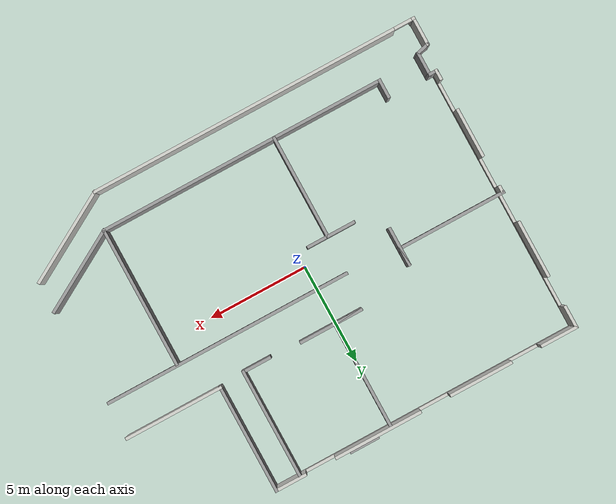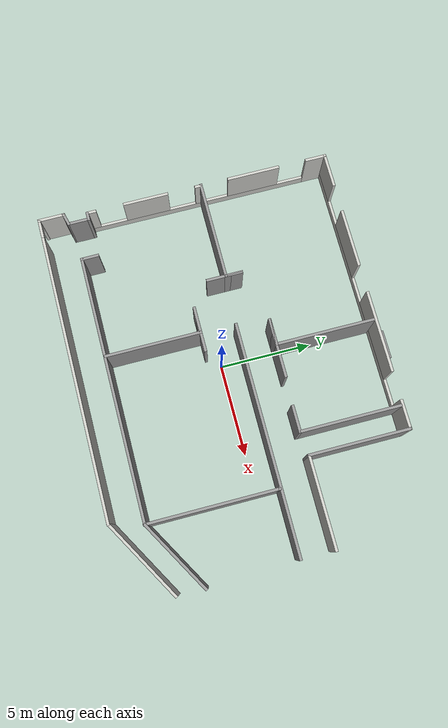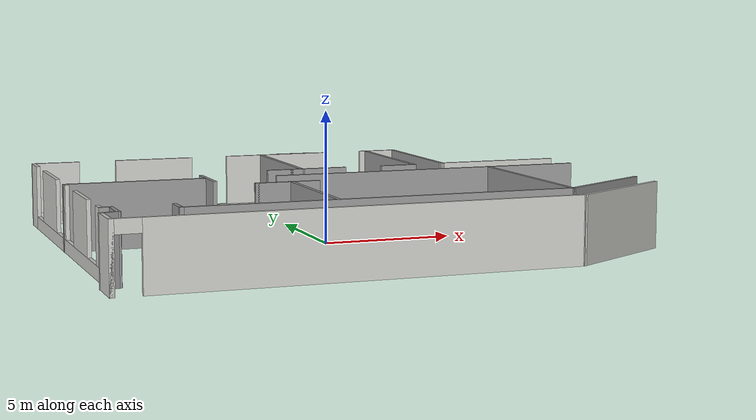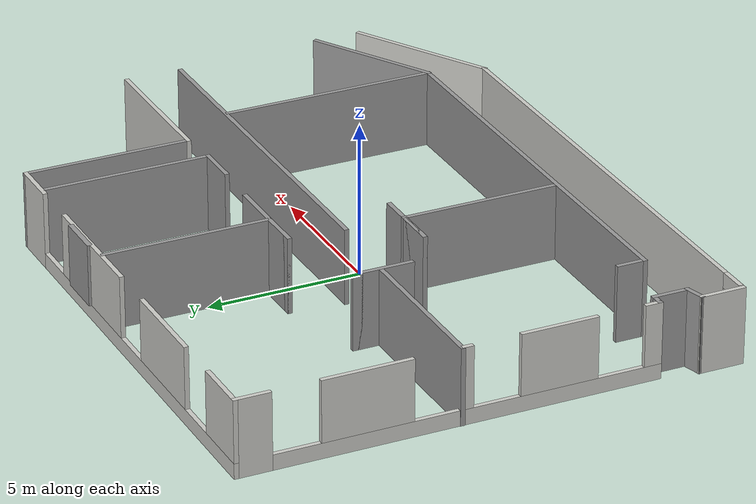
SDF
<?xml version='1.0'?>
<sdf version='1.6'>
  <model name='myoffice2f'>
    <pose frame=''>0.632045 0.350636 0 0 -0 0</pose>
    <link name='Wall_0'>
      <collision name='Wall_0_Collision'>
        <geometry>
          <box>
            <size>5 0.15 2.5</size>
          </box>
        </geometry>
        <pose frame=''>0 0 1.25 0 -0 0</pose>
      </collision>
      <visual name='Wall_0_Visual'>
        <pose frame=''>0 0 1.25 0 -0 0</pose>
        <geometry>
          <box>
            <size>5 0.15 2.5</size>
          </box>
        </geometry>
        <material>
          <script>
            <uri>file://media/materials/scripts/gazebo.material</uri>
            <name>Gazebo/CeilingTiled</name>
          </script>
          <ambient>1 1 1 1</ambient>
        </material>
        <meta>
          <layer>0</layer>
        </meta>
      </visual>
      <pose frame=''>7.82857 2.64137 0 0 -0 3.14159</pose>
    </link>
    <link name='Wall_1'>
      <collision name='Wall_1_Collision'>
        <geometry>
          <box>
            <size>5.5 0.15 2.5</size>
          </box>
        </geometry>
        <pose frame=''>0 0 1.25 0 -0 0</pose>
      </collision>
      <visual name='Wall_1_Visual'>
        <pose frame=''>0 0 1.25 0 -0 0</pose>
        <geometry>
          <box>
            <size>5.5 0.15 2.5</size>
          </box>
        </geometry>
        <material>
          <script>
            <uri>file://media/materials/scripts/gazebo.material</uri>
            <name>Gazebo/Grey</name>
          </script>
          <ambient>1 1 1 1</ambient>
        </material>
        <meta>
          <layer>0</layer>
        </meta>
      </visual>
      <pose frame=''>5.40357 5.31637 0 0 -0 1.5708</pose>
    </link>
    <link name='Wall_11'>
      <collision name='Wall_11_Collision'>
        <geometry>
          <box>
            <size>4.5 0.15 2.5</size>
          </box>
        </geometry>
        <pose frame=''>0 0 1.25 0 -0 0</pose>
      </collision>
      <visual name='Wall_11_Visual'>
        <pose frame=''>0 0 1.25 0 -0 0</pose>
        <geometry>
          <box>
            <size>4.5 0.15 2.5</size>
          </box>
        </geometry>
        <material>
          <script>
            <uri>file://media/materials/scripts/gazebo.material</uri>
            <name>Gazebo/Grey</name>
          </script>
          <ambient>0.533333 0.541176 0.521569 1</ambient>
        </material>
        <meta>
          <layer>0</layer>
        </meta>
      </visual>
      <pose frame=''>8.53178 -5.1213 0 0 -0 -2.61799</pose>
    </link>
    <link name='Wall_12'>
      <collision name='Wall_12_Collision'>
        <geometry>
          <box>
            <size>14.5 0.15 2.5</size>
          </box>
        </geometry>
        <pose frame=''>0 0 1.25 0 -0 0</pose>
      </collision>
      <visual name='Wall_12_Visual'>
        <pose frame=''>0 0 1.25 0 -0 0</pose>
        <geometry>
          <box>
            <size>14.5 0.15 2.5</size>
          </box>
        </geometry>
        <material>
          <script>
            <uri>file://media/materials/scripts/gazebo.material</uri>
            <name>Gazebo/Grey</name>
          </script>
          <ambient>0.533333 0.541176 0.521569 1</ambient>
        </material>
        <meta>
          <layer>0</layer>
        </meta>
      </visual>
      <pose frame=''>-0.52682 -6.2088 0 0 -0 3.14159</pose>
    </link>
    <link name='Wall_13'>
      <collision name='Wall_13_Collision'>
        <geometry>
          <box>
            <size>1 0.15 2.5</size>
          </box>
        </geometry>
        <pose frame=''>0 0 1.25 0 -0 0</pose>
      </collision>
      <visual name='Wall_13_Visual'>
        <pose frame=''>0 0 1.25 0 -0 0</pose>
        <geometry>
          <box>
            <size>1 0.15 2.5</size>
          </box>
        </geometry>
        <material>
          <script>
            <uri>file://media/materials/scripts/gazebo.material</uri>
            <name>Gazebo/Grey</name>
          </script>
          <ambient>1 1 1 1</ambient>
        </material>
        <meta>
          <layer>0</layer>
        </meta>
      </visual>
      <pose frame=''>-7.70182 -5.7838 0 0 -0 1.5708</pose>
    </link>
    <link name='Wall_15'>
      <collision name='Wall_15_Collision'>
        <geometry>
          <box>
            <size>12.5 0.15 2.5</size>
          </box>
        </geometry>
        <pose frame=''>0 0 1.25 0 -0 0</pose>
      </collision>
      <visual name='Wall_15_Visual'>
        <pose frame=''>0 0 1.25 0 -0 0</pose>
        <geometry>
          <box>
            <size>12.5 0.15 2.5</size>
          </box>
        </geometry>
        <material>
          <script>
            <uri>file://media/materials/scripts/gazebo.material</uri>
            <name>Gazebo/Grey</name>
          </script>
          <ambient>0.533333 0.541176 0.521569 1</ambient>
        </material>
        <meta>
          <layer>0</layer>
        </meta>
      </visual>
      <pose frame=''>4.03811 0.82087 0 0 -0 3.14159</pose>
    </link>
    <link name='Wall_19'>
      <collision name='Wall_19_Collision'>
        <geometry>
          <box>
            <size>7.1 0.15 2.5</size>
          </box>
        </geometry>
        <pose frame=''>0 0 1.25 0 -0 0</pose>
      </collision>
      <visual name='Wall_19_Visual'>
        <pose frame=''>0 0 1.25 0 -0 0</pose>
        <geometry>
          <box>
            <size>7.1 0.15 2.5</size>
          </box>
        </geometry>
        <material>
          <script>
            <uri>file://media/materials/scripts/gazebo.material</uri>
            <name>Gazebo/Grey</name>
          </script>
          <ambient>0.533333 0.541176 0.521569 1</ambient>
        </material>
        <meta>
          <layer>0</layer>
        </meta>
      </visual>
      <pose frame=''>6.64818 -2.7338 0 0 -0 1.5708</pose>
    </link>
    <link name='Wall_2'>
      <pose frame=''>-2.39643 7.99137 0 0 -0 3.14159</pose>
      <visual name='Wall_2_Visual_0'>
        <pose frame=''>-7.0543 0 1.25 0 -0 0</pose>
        <geometry>
          <box>
            <size>1.64141 0.15 2.5</size>
          </box>
        </geometry>
        <material>
          <script>
            <uri>file://media/materials/scripts/gazebo.material</uri>
            <name>Gazebo/CeilingTiled</name>
          </script>
          <ambient>1 1 1 1</ambient>
        </material>
        <meta>
          <layer>0</layer>
        </meta>
      </visual>
      <collision name='Wall_2_Collision_0'>
        <geometry>
          <box>
            <size>1.64141 0.15 2.5</size>
          </box>
        </geometry>
        <pose frame=''>-7.0543 0 1.25 0 -0 0</pose>
      </collision>
      <visual name='Wall_2_Visual_1'>
        <pose frame=''>0.820704 0 0.25 0 -0 0</pose>
        <geometry>
          <box>
            <size>14.1086 0.15 0.5</size>
          </box>
        </geometry>
        <material>
          <script>
            <uri>file://media/materials/scripts/gazebo.material</uri>
            <name>Gazebo/CeilingTiled</name>
          </script>
          <ambient>1 1 1 1</ambient>
        </material>
        <meta>
          <layer>0</layer>
        </meta>
      </visual>
      <collision name='Wall_2_Collision_1'>
        <geometry>
          <box>
            <size>14.1086 0.15 0.5</size>
          </box>
        </geometry>
        <pose frame=''>0.820704 0 0.25 0 -0 0</pose>
      </collision>
      <visual name='Wall_2_Visual_2'>
        <pose frame=''>-2.49734 0 1.5 0 -0 0</pose>
        <geometry>
          <box>
            <size>4.4725 0.15 2</size>
          </box>
        </geometry>
        <material>
          <script>
            <uri>file://media/materials/scripts/gazebo.material</uri>
            <name>Gazebo/CeilingTiled</name>
          </script>
          <ambient>1 1 1 1</ambient>
        </material>
        <meta>
          <layer>0</layer>
        </meta>
      </visual>
      <collision name='Wall_2_Collision_2'>
        <geometry>
          <box>
            <size>4.4725 0.15 2</size>
          </box>
        </geometry>
        <pose frame=''>-2.49734 0 1.5 0 -0 0</pose>
      </collision>
      <visual name='Wall_2_Visual_3'>
        <pose frame=''>2.84966 0 1.5 0 -0 0</pose>
        <geometry>
          <box>
            <size>3.22151 0.15 2</size>
          </box>
        </geometry>
        <material>
          <script>
            <uri>file://media/materials/scripts/gazebo.material</uri>
            <name>Gazebo/CeilingTiled</name>
          </script>
          <ambient>1 1 1 1</ambient>
        </material>
        <meta>
          <layer>0</layer>
        </meta>
      </visual>
      <collision name='Wall_2_Collision_3'>
        <geometry>
          <box>
            <size>3.22151 0.15 2</size>
          </box>
        </geometry>
        <pose frame=''>2.84966 0 1.5 0 -0 0</pose>
      </collision>
      <visual name='Wall_2_Visual_4'>
        <pose frame=''>6.91771 0 1.5 0 -0 0</pose>
        <geometry>
          <box>
            <size>1.91459 0.15 2</size>
          </box>
        </geometry>
        <material>
          <script>
            <uri>file://media/materials/scripts/gazebo.material</uri>
            <name>Gazebo/CeilingTiled</name>
          </script>
          <ambient>1 1 1 1</ambient>
        </material>
        <meta>
          <layer>0</layer>
        </meta>
      </visual>
      <collision name='Wall_2_Collision_4'>
        <geometry>
          <box>
            <size>1.91459 0.15 2</size>
          </box>
        </geometry>
        <pose frame=''>6.91771 0 1.5 0 -0 0</pose>
      </collision>
    </link>
    <link name='Wall_20'>
      <collision name='Wall_20_Collision'>
        <geometry>
          <box>
            <size>0.15 0.15 2.5</size>
          </box>
        </geometry>
        <pose frame=''>0 0 1.25 0 -0 0</pose>
      </collision>
      <visual name='Wall_20_Visual'>
        <pose frame=''>0 0 1.25 0 -0 0</pose>
        <geometry>
          <box>
            <size>0.15 0.15 2.5</size>
          </box>
        </geometry>
        <material>
          <script>
            <uri>file://media/materials/scripts/gazebo.material</uri>
            <name>Gazebo/Grey</name>
          </script>
          <ambient>1 1 1 1</ambient>
        </material>
        <meta>
          <layer>0</layer>
        </meta>
      </visual>
      <pose frame=''>6.64818 0.741201 0 0 -0 0</pose>
    </link>
    <link name='Wall_22'>
      <collision name='Wall_22_Collision'>
        <geometry>
          <box>
            <size>5.5 0.15 2.5</size>
          </box>
        </geometry>
        <pose frame=''>0 0 1.25 0 -0 0</pose>
      </collision>
      <visual name='Wall_22_Visual'>
        <pose frame=''>0 0 1.25 0 -0 0</pose>
        <geometry>
          <box>
            <size>5.5 0.15 2.5</size>
          </box>
        </geometry>
        <material>
          <script>
            <uri>file://media/materials/scripts/gazebo.material</uri>
            <name>Gazebo/Grey</name>
          </script>
          <ambient>0.533333 0.541176 0.521569 1</ambient>
        </material>
        <meta>
          <layer>0</layer>
        </meta>
      </visual>
      <pose frame=''>-7.54195 0.982693 0 0 -0 0</pose>
    </link>
    <link name='Wall_23'>
      <collision name='Wall_23_Collision'>
        <geometry>
          <box>
            <size>1 0.15 2.5</size>
          </box>
        </geometry>
        <pose frame=''>0 0 1.25 0 -0 0</pose>
      </collision>
      <visual name='Wall_23_Visual'>
        <pose frame=''>0 0 1.25 0 -0 0</pose>
        <geometry>
          <box>
            <size>1 0.15 2.5</size>
          </box>
        </geometry>
        <material>
          <script>
            <uri>file://media/materials/scripts/gazebo.material</uri>
            <name>Gazebo/Grey</name>
          </script>
          <ambient>0.533333 0.541176 0.521569 1</ambient>
        </material>
        <meta>
          <layer>0</layer>
        </meta>
      </visual>
      <pose frame=''>-4.86695 1.40769 0 0 -0 1.5708</pose>
    </link>
    <link name='Wall_24'>
      <collision name='Wall_24_Collision'>
        <geometry>
          <box>
            <size>2 0.15 2.5</size>
          </box>
        </geometry>
        <pose frame=''>0 0 1.25 0 -0 0</pose>
      </collision>
      <visual name='Wall_24_Visual'>
        <pose frame=''>0 0 1.25 0 -0 0</pose>
        <geometry>
          <box>
            <size>2 0.15 2.5</size>
          </box>
        </geometry>
        <material>
          <script>
            <uri>file://media/materials/scripts/gazebo.material</uri>
            <name>Gazebo/Grey</name>
          </script>
          <ambient>0.533333 0.541176 0.521569 1</ambient>
        </material>
        <meta>
          <layer>0</layer>
        </meta>
      </visual>
      <pose frame=''>-4.86695 0.907693 0 0 -0 -1.5708</pose>
    </link>
    <link name='Wall_26'>
      <collision name='Wall_26_Collision'>
        <geometry>
          <box>
            <size>5.25 0.15 2.5</size>
          </box>
        </geometry>
        <pose frame=''>0 0 1.25 0 -0 0</pose>
      </collision>
      <visual name='Wall_26_Visual'>
        <pose frame=''>0 0 1.25 0 -0 0</pose>
        <geometry>
          <box>
            <size>5.25 0.15 2.5</size>
          </box>
        </geometry>
        <material>
          <script>
            <uri>file://media/materials/scripts/gazebo.material</uri>
            <name>Gazebo/Grey</name>
          </script>
          <ambient>0.533333 0.541176 0.521569 1</ambient>
        </material>
        <meta>
          <layer>0</layer>
        </meta>
      </visual>
      <pose frame=''>-2.20675 -3.62794 0 0 -0 1.5708</pose>
    </link>
    <link name='Wall_27'>
      <collision name='Wall_27_Collision'>
        <geometry>
          <box>
            <size>1.5 0.15 2.5</size>
          </box>
        </geometry>
        <pose frame=''>0 0 1.25 0 -0 0</pose>
      </collision>
      <visual name='Wall_27_Visual'>
        <pose frame=''>0 0 1.25 0 -0 0</pose>
        <geometry>
          <box>
            <size>1.5 0.15 2.5</size>
          </box>
        </geometry>
        <material>
          <script>
            <uri>file://media/materials/scripts/gazebo.material</uri>
            <name>Gazebo/Grey</name>
          </script>
          <ambient>0.533333 0.541176 0.521569 1</ambient>
        </material>
        <meta>
          <layer>0</layer>
        </meta>
      </visual>
      <pose frame=''>-2.88175 -1.07794 0 0 -0 3.14159</pose>
    </link>
    <link name='Wall_28'>
      <collision name='Wall_28_Collision'>
        <geometry>
          <box>
            <size>2.5 0.15 2.5</size>
          </box>
        </geometry>
        <pose frame=''>0 0 1.25 0 -0 0</pose>
      </collision>
      <visual name='Wall_28_Visual'>
        <pose frame=''>0 0 1.25 0 -0 0</pose>
        <geometry>
          <box>
            <size>2.5 0.15 2.5</size>
          </box>
        </geometry>
        <material>
          <script>
            <uri>file://media/materials/scripts/gazebo.material</uri>
            <name>Gazebo/Grey</name>
          </script>
          <ambient>0.533333 0.541176 0.521569 1</ambient>
        </material>
        <meta>
          <layer>0</layer>
        </meta>
      </visual>
      <pose frame=''>-2.38175 -1.07794 0 0 -0 0</pose>
    </link>
    <link name='Wall_3'>
      <pose frame=''>-10.1964 1.31637 0 0 -0 -1.5708</pose>
      <visual name='Wall_3_Visual_0'>
        <pose frame=''>-6.15767 0 1.25 0 -0 0</pose>
        <geometry>
          <box>
            <size>1.18465 0.15 2.5</size>
          </box>
        </geometry>
        <material>
          <script>
            <uri>file://media/materials/scripts/gazebo.material</uri>
            <name>Gazebo/CeilingTiled</name>
          </script>
          <ambient>1 1 1 1</ambient>
        </material>
        <meta>
          <layer>0</layer>
        </meta>
      </visual>
      <collision name='Wall_3_Collision_0'>
        <geometry>
          <box>
            <size>1.18465 0.15 2.5</size>
          </box>
        </geometry>
        <pose frame=''>-6.15767 0 1.25 0 -0 0</pose>
      </collision>
      <visual name='Wall_3_Visual_1'>
        <pose frame=''>0.592326 0 0.25 0 -0 0</pose>
        <geometry>
          <box>
            <size>12.3153 0.15 0.5</size>
          </box>
        </geometry>
        <material>
          <script>
            <uri>file://media/materials/scripts/gazebo.material</uri>
            <name>Gazebo/CeilingTiled</name>
          </script>
          <ambient>1 1 1 1</ambient>
        </material>
        <meta>
          <layer>0</layer>
        </meta>
      </visual>
      <collision name='Wall_3_Collision_1'>
        <geometry>
          <box>
            <size>12.3153 0.15 0.5</size>
          </box>
        </geometry>
        <pose frame=''>0.592326 0 0.25 0 -0 0</pose>
      </collision>
      <visual name='Wall_3_Visual_2'>
        <pose frame=''>-2.61601 0 1.5 0 -0 0</pose>
        <geometry>
          <box>
            <size>2.89867 0.15 2</size>
          </box>
        </geometry>
        <material>
          <script>
            <uri>file://media/materials/scripts/gazebo.material</uri>
            <name>Gazebo/CeilingTiled</name>
          </script>
          <ambient>1 1 1 1</ambient>
        </material>
        <meta>
          <layer>0</layer>
        </meta>
      </visual>
      <collision name='Wall_3_Collision_2'>
        <geometry>
          <box>
            <size>2.89867 0.15 2</size>
          </box>
        </geometry>
        <pose frame=''>-2.61601 0 1.5 0 -0 0</pose>
      </collision>
      <visual name='Wall_3_Visual_3'>
        <pose frame=''>0.511478 0 1.5 0 -0 0</pose>
        <geometry>
          <box>
            <size>0.356318 0.15 2</size>
          </box>
        </geometry>
        <material>
          <script>
            <uri>file://media/materials/scripts/gazebo.material</uri>
            <name>Gazebo/CeilingTiled</name>
          </script>
          <ambient>1 1 1 1</ambient>
        </material>
        <meta>
          <layer>0</layer>
        </meta>
      </visual>
      <collision name='Wall_3_Collision_3'>
        <geometry>
          <box>
            <size>0.356318 0.15 2</size>
          </box>
        </geometry>
        <pose frame=''>0.511478 0 1.5 0 -0 0</pose>
      </collision>
      <visual name='Wall_3_Visual_4'>
        <pose frame=''>3.4372 0 1.5 0 -0 0</pose>
        <geometry>
          <box>
            <size>2.49512 0.15 2</size>
          </box>
        </geometry>
        <material>
          <script>
            <uri>file://media/materials/scripts/gazebo.material</uri>
            <name>Gazebo/CeilingTiled</name>
          </script>
          <ambient>1 1 1 1</ambient>
        </material>
        <meta>
          <layer>0</layer>
        </meta>
      </visual>
      <collision name='Wall_3_Collision_4'>
        <geometry>
          <box>
            <size>2.49512 0.15 2</size>
          </box>
        </geometry>
        <pose frame=''>3.4372 0 1.5 0 -0 0</pose>
      </collision>
      <visual name='Wall_3_Visual_5'>
        <pose frame=''>6.46738 0 1.5 0 -0 0</pose>
        <geometry>
          <box>
            <size>0.565244 0.15 2</size>
          </box>
        </geometry>
        <material>
          <script>
            <uri>file://media/materials/scripts/gazebo.material</uri>
            <name>Gazebo/CeilingTiled</name>
          </script>
          <ambient>1 1 1 1</ambient>
        </material>
        <meta>
          <layer>0</layer>
        </meta>
      </visual>
      <collision name='Wall_3_Collision_5'>
        <geometry>
          <box>
            <size>0.565244 0.15 2</size>
          </box>
        </geometry>
        <pose frame=''>6.46738 0 1.5 0 -0 0</pose>
      </collision>
    </link>
    <link name='Wall_30'>
      <collision name='Wall_30_Collision'>
        <geometry>
          <box>
            <size>5.5 0.15 2.5</size>
          </box>
        </geometry>
        <pose frame=''>0 0 1.25 0 -0 0</pose>
      </collision>
      <visual name='Wall_30_Visual'>
        <pose frame=''>0 0 1.25 0 -0 0</pose>
        <geometry>
          <box>
            <size>5.5 0.15 2.5</size>
          </box>
        </geometry>
        <material>
          <script>
            <uri>file://media/materials/scripts/gazebo.material</uri>
            <name>Gazebo/Grey</name>
          </script>
          <ambient>0.533333 0.541176 0.521569 1</ambient>
        </material>
        <meta>
          <layer>0</layer>
        </meta>
      </visual>
      <pose frame=''>-0.588527 5.26605 0 0 -0 -1.5708</pose>
    </link>
    <link name='Wall_31'>
      <collision name='Wall_31_Collision'>
        <geometry>
          <box>
            <size>1.5 0.15 2.5</size>
          </box>
        </geometry>
        <pose frame=''>0 0 1.25 0 -0 0</pose>
      </collision>
      <visual name='Wall_31_Visual'>
        <pose frame=''>0 0 1.25 0 -0 0</pose>
        <geometry>
          <box>
            <size>1.5 0.15 2.5</size>
          </box>
        </geometry>
        <material>
          <script>
            <uri>file://media/materials/scripts/gazebo.material</uri>
            <name>Gazebo/Grey</name>
          </script>
          <ambient>0.533333 0.541176 0.521569 1</ambient>
        </material>
        <meta>
          <layer>0</layer>
        </meta>
      </visual>
      <pose frame=''>-1.26353 2.59105 0 0 -0 3.14159</pose>
    </link>
    <link name='Wall_32'>
      <collision name='Wall_32_Collision'>
        <geometry>
          <box>
            <size>3.25 0.15 2.5</size>
          </box>
        </geometry>
        <pose frame=''>0 0 1.25 0 -0 0</pose>
      </collision>
      <visual name='Wall_32_Visual'>
        <pose frame=''>0 0 1.25 0 -0 0</pose>
        <geometry>
          <box>
            <size>3.25 0.15 2.5</size>
          </box>
        </geometry>
        <material>
          <script>
            <uri>file://media/materials/scripts/gazebo.material</uri>
            <name>Gazebo/Grey</name>
          </script>
          <ambient>0.533333 0.541176 0.521569 1</ambient>
        </material>
        <meta>
          <layer>0</layer>
        </meta>
      </visual>
      <pose frame=''>-0.388527 2.59105 0 0 -0 0</pose>
    </link>
    <link name='Wall_34'>
      <collision name='Wall_34_Collision'>
        <geometry>
          <box>
            <size>5.5 0.15 2.5</size>
          </box>
        </geometry>
        <pose frame=''>0 0 1.25 0 -0 0</pose>
      </collision>
      <visual name='Wall_34_Visual'>
        <pose frame=''>0 0 1.25 0 -0 0</pose>
        <geometry>
          <box>
            <size>5.5 0.15 2.5</size>
          </box>
        </geometry>
        <material>
          <script>
            <uri>file://media/materials/scripts/gazebo.material</uri>
            <name>Gazebo/Grey</name>
          </script>
          <ambient>0.533333 0.541176 0.521569 1</ambient>
        </material>
        <meta>
          <layer>0</layer>
        </meta>
      </visual>
      <pose frame=''>4.13638 5.19197 0 0 -0 -1.5708</pose>
    </link>
    <link name='Wall_35'>
      <collision name='Wall_35_Collision'>
        <geometry>
          <box>
            <size>1.5 0.15 2.5</size>
          </box>
        </geometry>
        <pose frame=''>0 0 1.25 0 -0 0</pose>
      </collision>
      <visual name='Wall_35_Visual'>
        <pose frame=''>0 0 1.25 0 -0 0</pose>
        <geometry>
          <box>
            <size>1.5 0.15 2.5</size>
          </box>
        </geometry>
        <material>
          <script>
            <uri>file://media/materials/scripts/gazebo.material</uri>
            <name>Gazebo/Grey</name>
          </script>
          <ambient>0.533333 0.541176 0.521569 1</ambient>
        </material>
        <meta>
          <layer>0</layer>
        </meta>
      </visual>
      <pose frame=''>3.46138 2.51697 0 0 -0 3.14159</pose>
    </link>
    <link name='Wall_4'>
      <collision name='Wall_4_Collision'>
        <geometry>
          <box>
            <size>0.5 0.15 2.5</size>
          </box>
        </geometry>
        <pose frame=''>0 0 1.25 0 -0 0</pose>
      </collision>
      <visual name='Wall_4_Visual'>
        <pose frame=''>0 0 1.25 0 -0 0</pose>
        <geometry>
          <box>
            <size>0.5 0.15 2.5</size>
          </box>
        </geometry>
        <material>
          <script>
            <uri>file://media/materials/scripts/gazebo.material</uri>
            <name>Gazebo/Grey</name>
          </script>
          <ambient>1 1 1 1</ambient>
        </material>
        <meta>
          <layer>0</layer>
        </meta>
      </visual>
      <pose frame=''>-10.0214 -5.35863 0 0 -0 0</pose>
    </link>
    <link name='Wall_5'>
      <collision name='Wall_5_Collision'>
        <geometry>
          <box>
            <size>1.25 0.15 2.5</size>
          </box>
        </geometry>
        <pose frame=''>0 0 1.25 0 -0 0</pose>
      </collision>
      <visual name='Wall_5_Visual'>
        <pose frame=''>0 0 1.25 0 -0 0</pose>
        <geometry>
          <box>
            <size>1.25 0.15 2.5</size>
          </box>
        </geometry>
        <material>
          <script>
            <uri>file://media/materials/scripts/gazebo.material</uri>
            <name>Gazebo/Grey</name>
          </script>
          <ambient>1 1 1 1</ambient>
        </material>
        <meta>
          <layer>0</layer>
        </meta>
      </visual>
      <pose frame=''>-9.84643 -5.90863 0 0 -0 -1.5708</pose>
    </link>
    <link name='Wall_6'>
      <collision name='Wall_6_Collision'>
        <geometry>
          <box>
            <size>0.75 0.15 2.5</size>
          </box>
        </geometry>
        <pose frame=''>0 0 1.25 0 -0 0</pose>
      </collision>
      <visual name='Wall_6_Visual'>
        <pose frame=''>0 0 1.25 0 -0 0</pose>
        <geometry>
          <box>
            <size>0.75 0.15 2.5</size>
          </box>
        </geometry>
        <material>
          <script>
            <uri>file://media/materials/scripts/gazebo.material</uri>
            <name>Gazebo/Grey</name>
          </script>
          <ambient>1 1 1 1</ambient>
        </material>
        <meta>
          <layer>0</layer>
        </meta>
      </visual>
      <pose frame=''>-10.1362 -6.53627 0 0 -0 -2.87979</pose>
    </link>
    <link name='Wall_7'>
      <collision name='Wall_7_Collision'>
        <geometry>
          <box>
            <size>1.5 0.15 2.5</size>
          </box>
        </geometry>
        <pose frame=''>0 0 1.25 0 -0 0</pose>
      </collision>
      <visual name='Wall_7_Visual'>
        <pose frame=''>0 0 1.25 0 -0 0</pose>
        <geometry>
          <box>
            <size>1.5 0.15 2.5</size>
          </box>
        </geometry>
        <material>
          <script>
            <uri>file://media/materials/scripts/gazebo.material</uri>
            <name>Gazebo/CeilingTiled</name>
          </script>
          <ambient>1 1 1 1</ambient>
        </material>
        <meta>
          <layer>0</layer>
        </meta>
      </visual>
      <pose frame=''>-10.426 -7.28892 0 0 -0 -1.5708</pose>
    </link>
    <link name='Wall_8'>
      <pose frame=''>-2.12599 -7.96392 0 0 -0 0</pose>
      <visual name='Wall_8_Visual_0'>
        <pose frame=''>-8.28286 0 1.25 0 -0 0</pose>
        <geometry>
          <box>
            <size>0.184276 0.15 2.5</size>
          </box>
        </geometry>
        <material>
          <script>
            <uri>file://media/materials/scripts/gazebo.material</uri>
            <name>Gazebo/CeilingTiled</name>
          </script>
          <ambient>1 1 1 1</ambient>
        </material>
        <meta>
          <layer>0</layer>
        </meta>
      </visual>
      <collision name='Wall_8_Collision_0'>
        <geometry>
          <box>
            <size>0.184276 0.15 2.5</size>
          </box>
        </geometry>
        <pose frame=''>-8.28286 0 1.25 0 -0 0</pose>
      </collision>
      <visual name='Wall_8_Visual_1'>
        <pose frame=''>0.542138 0 1.25 0 -0 0</pose>
        <geometry>
          <box>
            <size>15.6657 0.15 2.5</size>
          </box>
        </geometry>
        <material>
          <script>
            <uri>file://media/materials/scripts/gazebo.material</uri>
            <name>Gazebo/CeilingTiled</name>
          </script>
          <ambient>1 1 1 1</ambient>
        </material>
        <meta>
          <layer>0</layer>
        </meta>
      </visual>
      <collision name='Wall_8_Collision_1'>
        <geometry>
          <box>
            <size>15.6657 0.15 2.5</size>
          </box>
        </geometry>
        <pose frame=''>0.542138 0 1.25 0 -0 0</pose>
      </collision>
      <visual name='Wall_8_Visual_2'>
        <pose frame=''>-7.74072 0 2.25 0 -0 0</pose>
        <geometry>
          <box>
            <size>0.9 0.15 0.5</size>
          </box>
        </geometry>
        <material>
          <script>
            <uri>file://media/materials/scripts/gazebo.material</uri>
            <name>Gazebo/CeilingTiled</name>
          </script>
          <ambient>1 1 1 1</ambient>
        </material>
        <meta>
          <layer>0</layer>
        </meta>
      </visual>
      <collision name='Wall_8_Collision_2'>
        <geometry>
          <box>
            <size>0.9 0.15 0.5</size>
          </box>
        </geometry>
        <pose frame=''>-7.74072 0 2.25 0 -0 0</pose>
      </collision>
    </link>
    <link name='Wall_9'>
      <collision name='Wall_9_Collision'>
        <geometry>
          <box>
            <size>5 0.15 2.5</size>
          </box>
        </geometry>
        <pose frame=''>0 0 1.25 0 -0 0</pose>
      </collision>
      <visual name='Wall_9_Visual'>
        <pose frame=''>0 0 1.25 0 -0 0</pose>
        <geometry>
          <box>
            <size>5 0.15 2.5</size>
          </box>
        </geometry>
        <material>
          <script>
            <uri>file://media/materials/scripts/gazebo.material</uri>
            <name>Gazebo/CeilingTiled</name>
          </script>
          <ambient>1 1 1 1</ambient>
        </material>
        <meta>
          <layer>0</layer>
        </meta>
      </visual>
      <pose frame=''>8.27412 -6.75142 0 0 -0 0.523599</pose>
    </link>
    <link name='Window_6'>
      <collision name='Window_6_Collision'>
        <geometry>
          <box>
            <size>1.5 0.17 2</size>
          </box>
        </geometry>
        <pose frame=''>0 0 1 0 -0 0</pose>
      </collision>
      <visual name='Window_6_Visual'>
        <pose frame=''>0 0 1 0 -0 0</pose>
        <geometry>
          <box>
            <size>1.5 0.17 2</size>
          </box>
        </geometry>
        <material>
          <script>
            <uri>file://media/materials/scripts/gazebo.material</uri>
            <name>Gazebo/Grey</name>
          </script>
        </material>
      </visual>
      <pose frame=''>0.867649 8.06875 0.5 0 -0 0</pose>
    </link>
    <static>1</static>
  </model>
</sdf>
